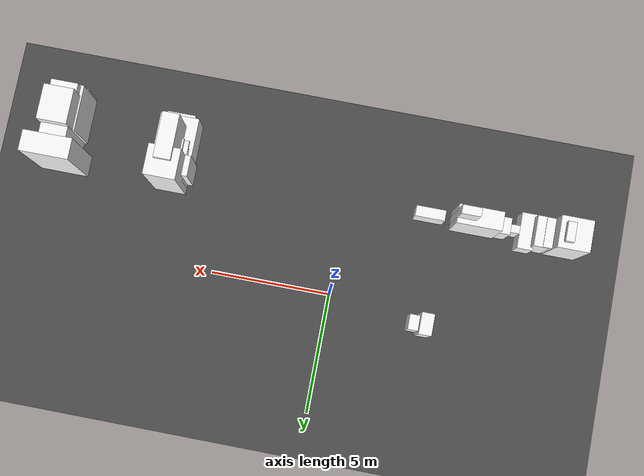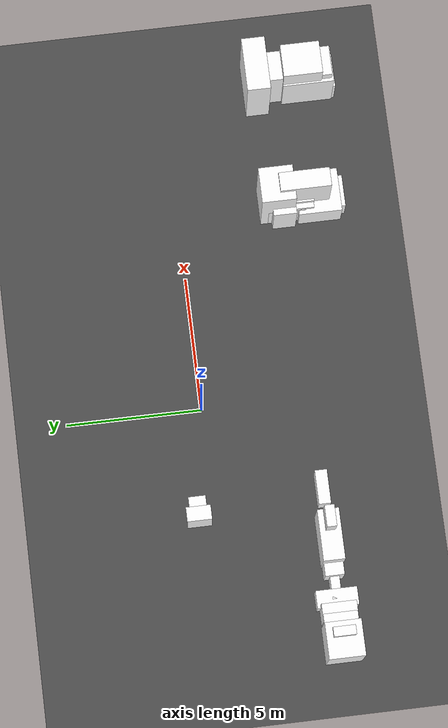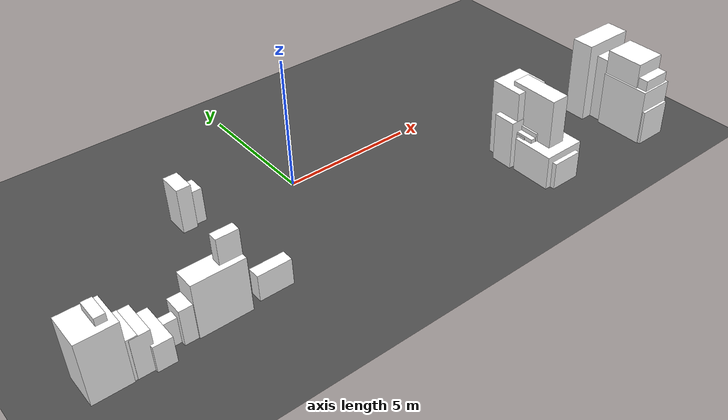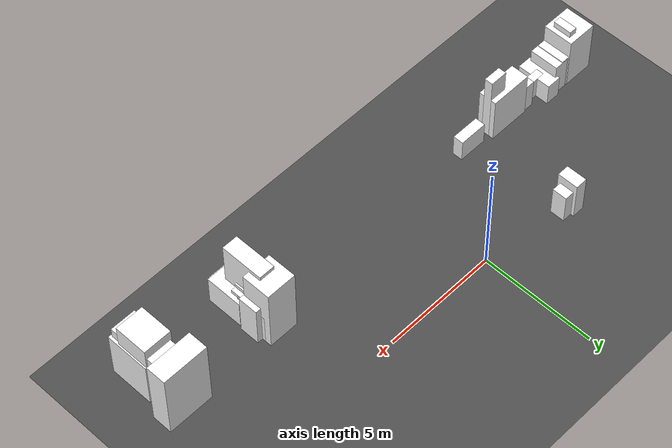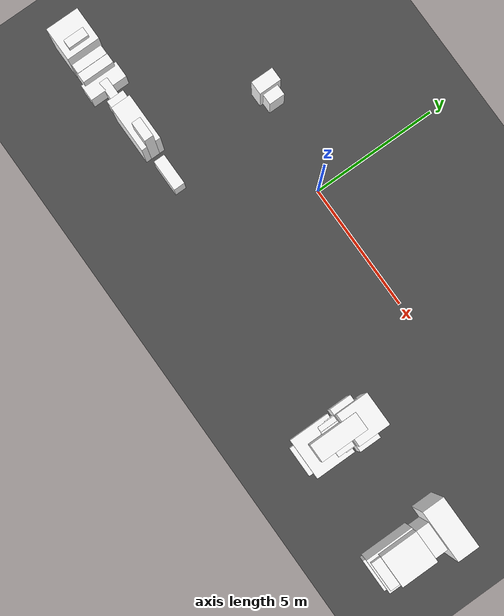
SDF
<sdf version="1.6">
 <world name="mirror_edge_world">
  <model name="ground_plane">
   <static>true</static>
   <link name="link">
    <collision name="collision">
     <geometry><plane><normal>0 0 1</normal><size>100 100</size></plane></geometry>
    </collision>
    <visual name="visual">
     <geometry><plane><normal>0 0 1</normal><size>100 100</size></plane></geometry>
     <material>
      <ambient>0.3 0.3 0.3 1</ambient>
      <diffuse>0.3 0.3 0.3 1</diffuse>
      <specular>0.5 0.5 0.5 1</specular>
      <emissive>0 0 0 1</emissive>
     </material>
    </visual>
   </link>
  </model>
  <model name="roadside_block_4_55_0">
   <static>true</static>
   <link name="link">
    <pose>-9.180717003123458 -4.037353343994417 1.182601318601939 0 0 0</pose>
    <collision name="collision">
     <geometry><box><size>1.31819051042542 1.316484710877024 2.365202637203878</size></box></geometry>
    </collision>
    <visual name="visual">
     <geometry><box><size>1.31819051042542 1.316484710877024 2.365202637203878</size></box></geometry>
     <material>
      <ambient>1 1 1 1</ambient>
      <diffuse>1 1 1 1</diffuse>
      <specular>0.9 0.9 0.9 1</specular>
      <emissive>0.05 0.05 0.05 1</emissive>
     </material>
    </visual>
   </link>
  </model>
  <model name="roadside_block_4_56_0">
   <static>true</static>
   <link name="link">
    <pose>-8.910439130452975 -4.037353343994417 1.3215104466818355 0 0 0</pose>
    <collision name="collision">
     <geometry><box><size>0.3481101251274835 0.8099121674919845 2.643020893363671</size></box></geometry>
    </collision>
    <visual name="visual">
     <geometry><box><size>0.3481101251274835 0.8099121674919845 2.643020893363671</size></box></geometry>
     <material>
      <ambient>1 1 1 1</ambient>
      <diffuse>1 1 1 1</diffuse>
      <specular>0.9 0.9 0.9 1</specular>
      <emissive>0.05 0.05 0.05 1</emissive>
     </material>
    </visual>
   </link>
  </model>
  <model name="roadside_block_4_57_0">
   <static>true</static>
   <link name="link">
    <pose>-8.640161257782493 -4.037353343994417 0.7910589240658343 0 0 0</pose>
    <collision name="collision">
     <geometry><box><size>0.9883071514049591 1.2464293320204758 1.5821178481316687</size></box></geometry>
    </collision>
    <visual name="visual">
     <geometry><box><size>0.9883071514049591 1.2464293320204758 1.5821178481316687</size></box></geometry>
     <material>
      <ambient>1 1 1 1</ambient>
      <diffuse>1 1 1 1</diffuse>
      <specular>0.9 0.9 0.9 1</specular>
      <emissive>0.05 0.05 0.05 1</emissive>
     </material>
    </visual>
   </link>
  </model>
  <model name="roadside_block_4_59_0">
   <static>true</static>
   <link name="link">
    <pose>-8.099605512441528 -4.037353343994417 0.7768243807806121 0 0 0</pose>
    <collision name="collision">
     <geometry><box><size>0.6513775224002112 1.2747233725840352 1.5536487615612242</size></box></geometry>
    </collision>
    <visual name="visual">
     <geometry><box><size>0.6513775224002112 1.2747233725840352 1.5536487615612242</size></box></geometry>
     <material>
      <ambient>1 1 1 1</ambient>
      <diffuse>1 1 1 1</diffuse>
      <specular>0.9 0.9 0.9 1</specular>
      <emissive>0.05 0.05 0.05 1</emissive>
     </material>
    </visual>
   </link>
  </model>
  <model name="roadside_block_4_61_0">
   <static>true</static>
   <link name="link">
    <pose>-7.559049767100561 -4.037353343994417 0.5 0 0 0</pose>
    <collision name="collision">
     <geometry><box><size>0.6460904792428995 1.5150489043961595 1.0</size></box></geometry>
    </collision>
    <visual name="visual">
     <geometry><box><size>0.6460904792428995 1.5150489043961595 1.0</size></box></geometry>
     <material>
      <ambient>1 1 1 1</ambient>
      <diffuse>1 1 1 1</diffuse>
      <specular>0.9 0.9 0.9 1</specular>
      <emissive>0.05 0.05 0.05 1</emissive>
     </material>
    </visual>
   </link>
  </model>
  <model name="roadside_block_4_63_0">
   <static>true</static>
   <link name="link">
    <pose>-7.018494021759597 -4.037353343994417 0.5 0 0 0</pose>
    <collision name="collision">
     <geometry><box><size>1.1628999586268218 0.3433489319059 1.0</size></box></geometry>
    </collision>
    <visual name="visual">
     <geometry><box><size>1.1628999586268218 0.3433489319059 1.0</size></box></geometry>
     <material>
      <ambient>1 1 1 1</ambient>
      <diffuse>1 1 1 1</diffuse>
      <specular>0.9 0.9 0.9 1</specular>
      <emissive>0.05 0.05 0.05 1</emissive>
     </material>
    </visual>
   </link>
  </model>
  <model name="roadside_block_4_65_0">
   <static>true</static>
   <link name="link">
    <pose>-6.477938276418634 -4.037353343994417 0.6767401180126882 0 0 0</pose>
    <collision name="collision">
     <geometry><box><size>0.6304540982120892 0.7008710442743983 1.3534802360253764</size></box></geometry>
    </collision>
    <visual name="visual">
     <geometry><box><size>0.6304540982120892 0.7008710442743983 1.3534802360253764</size></box></geometry>
     <material>
      <ambient>1 1 1 1</ambient>
      <diffuse>1 1 1 1</diffuse>
      <specular>0.9 0.9 0.9 1</specular>
      <emissive>0.05 0.05 0.05 1</emissive>
     </material>
    </visual>
   </link>
  </model>
  <model name="roadside_block_4_69_0">
   <static>true</static>
   <link name="link">
    <pose>-5.396826785736703 -4.037353343994417 1.0483481255024214 0 0 0</pose>
    <collision name="collision">
     <geometry><box><size>1.8570328902194415 0.7885646274507241 2.096696251004843</size></box></geometry>
    </collision>
    <visual name="visual">
     <geometry><box><size>1.8570328902194415 0.7885646274507241 2.096696251004843</size></box></geometry>
     <material>
      <ambient>1 1 1 1</ambient>
      <diffuse>1 1 1 1</diffuse>
      <specular>0.9 0.9 0.9 1</specular>
      <emissive>0.05 0.05 0.05 1</emissive>
     </material>
    </visual>
   </link>
  </model>
  <model name="roadside_block_4_71_0">
   <static>true</static>
   <link name="link">
    <pose>-4.85627104039574 -4.037353343994417 1.529012102121926 0 0 0</pose>
    <collision name="collision">
     <geometry><box><size>0.7784235450919456 0.35682794878201507 3.058024204243852</size></box></geometry>
    </collision>
    <visual name="visual">
     <geometry><box><size>0.7784235450919456 0.35682794878201507 3.058024204243852</size></box></geometry>
     <material>
      <ambient>1 1 1 1</ambient>
      <diffuse>1 1 1 1</diffuse>
      <specular>0.9 0.9 0.9 1</specular>
      <emissive>0.05 0.05 0.05 1</emissive>
     </material>
    </visual>
   </link>
  </model>
  <model name="roadside_block_4_74_0">
   <static>true</static>
   <link name="link">
    <pose>-4.045437422384289 0.5626466560055823 0.8795741425737434 0 0 0</pose>
    <collision name="collision">
     <geometry><box><size>0.525638513308506 0.9010704101569069 1.759148285147487</size></box></geometry>
    </collision>
    <visual name="visual">
     <geometry><box><size>0.525638513308506 0.9010704101569069 1.759148285147487</size></box></geometry>
     <material>
      <ambient>1 1 1 1</ambient>
      <diffuse>1 1 1 1</diffuse>
      <specular>0.9 0.9 0.9 1</specular>
      <emissive>0.05 0.05 0.05 1</emissive>
     </material>
    </visual>
   </link>
  </model>
  <model name="roadside_block_4_75_0">
   <static>true</static>
   <link name="link">
    <pose>-3.775159549713809 0.5626466560055823 0.6717874063257285 0 0 0</pose>
    <collision name="collision">
     <geometry><box><size>0.8217626820669542 0.6338635389022267 1.343574812651457</size></box></geometry>
    </collision>
    <visual name="visual">
     <geometry><box><size>0.8217626820669542 0.6338635389022267 1.343574812651457</size></box></geometry>
     <material>
      <ambient>1 1 1 1</ambient>
      <diffuse>1 1 1 1</diffuse>
      <specular>0.9 0.9 0.9 1</specular>
      <emissive>0.05 0.05 0.05 1</emissive>
     </material>
    </visual>
   </link>
  </model>
  <model name="roadside_block_4_76_0">
   <static>true</static>
   <link name="link">
    <pose>-3.5048816770433255 -4.037353343994417 0.5047758168865659 0 0 0</pose>
    <collision name="collision">
     <geometry><box><size>1.2495996281936645 0.44708496023002886 1.0095516337731318</size></box></geometry>
    </collision>
    <visual name="visual">
     <geometry><box><size>1.2495996281936645 0.44708496023002886 1.0095516337731318</size></box></geometry>
     <material>
      <ambient>1 1 1 1</ambient>
      <diffuse>1 1 1 1</diffuse>
      <specular>0.9 0.9 0.9 1</specular>
      <emissive>0.05 0.05 0.05 1</emissive>
     </material>
    </visual>
   </link>
  </model>
  <model name="roadside_block_5_0_0">
   <static>true</static>
   <link name="link">
    <pose>12.062890913326367 -6.04 0.6839875283101858 0 0 0</pose>
    <collision name="collision">
     <geometry><box><size>1.2572220566803494 0.7546891650662729 1.3679750566203717</size></box></geometry>
    </collision>
    <visual name="visual">
     <geometry><box><size>1.2572220566803494 0.7546891650662729 1.3679750566203717</size></box></geometry>
     <material>
      <ambient>1 1 1 1</ambient>
      <diffuse>1 1 1 1</diffuse>
      <specular>0.9 0.9 0.9 1</specular>
      <emissive>0.05 0.05 0.05 1</emissive>
     </material>
    </visual>
   </link>
  </model>
  <model name="roadside_block_5_1_0">
   <static>true</static>
   <link name="link">
    <pose>12.062890913326367 -5.9276476770910875 1.3047750438973034 0 0 0</pose>
    <collision name="collision">
     <geometry><box><size>1.1072448224689375 0.6392549589485732 2.6095500877946067</size></box></geometry>
    </collision>
    <visual name="visual">
     <geometry><box><size>1.1072448224689375 0.6392549589485732 2.6095500877946067</size></box></geometry>
     <material>
      <ambient>1 1 1 1</ambient>
      <diffuse>1 1 1 1</diffuse>
      <specular>0.9 0.9 0.9 1</specular>
      <emissive>0.05 0.05 0.05 1</emissive>
     </material>
    </visual>
   </link>
  </model>
  <model name="roadside_block_5_2_0">
   <static>true</static>
   <link name="link">
    <pose>12.062890913326367 -5.815295354182175 1.056510042086433 0 0 0</pose>
    <collision name="collision">
     <geometry><box><size>0.9287362196668629 0.9103313230841756 2.113020084172866</size></box></geometry>
    </collision>
    <visual name="visual">
     <geometry><box><size>0.9287362196668629 0.9103313230841756 2.113020084172866</size></box></geometry>
     <material>
      <ambient>1 1 1 1</ambient>
      <diffuse>1 1 1 1</diffuse>
      <specular>0.9 0.9 0.9 1</specular>
      <emissive>0.05 0.05 0.05 1</emissive>
     </material>
    </visual>
   </link>
  </model>
  <model name="roadside_block_5_3_0">
   <static>true</static>
   <link name="link">
    <pose>12.062890913326367 -5.7029430312732625 0.5344201764649996 0 0 0</pose>
    <collision name="collision">
     <geometry><box><size>0.6895226664266707 0.7217084018837645 1.0688403529299992</size></box></geometry>
    </collision>
    <visual name="visual">
     <geometry><box><size>0.6895226664266707 0.7217084018837645 1.0688403529299992</size></box></geometry>
     <material>
      <ambient>1 1 1 1</ambient>
      <diffuse>1 1 1 1</diffuse>
      <specular>0.9 0.9 0.9 1</specular>
      <emissive>0.05 0.05 0.05 1</emissive>
     </material>
    </visual>
   </link>
  </model>
  <model name="roadside_block_5_4_0">
   <static>true</static>
   <link name="link">
    <pose>7.462890913326366 -5.590590708364351 0.5286381470160281 0 0 0</pose>
    <collision name="collision">
     <geometry><box><size>1.1811662902760618 1.2767910518876113 1.0572762940320561</size></box></geometry>
    </collision>
    <visual name="visual">
     <geometry><box><size>1.1811662902760618 1.2767910518876113 1.0572762940320561</size></box></geometry>
     <material>
      <ambient>1 1 1 1</ambient>
      <diffuse>1 1 1 1</diffuse>
      <specular>0.9 0.9 0.9 1</specular>
      <emissive>0.05 0.05 0.05 1</emissive>
     </material>
    </visual>
   </link>
  </model>
  <model name="roadside_block_5_5_0">
   <static>true</static>
   <link name="link">
    <pose>12.062890913326367 -5.478238385455438 0.7990969906731807 0 0 0</pose>
    <collision name="collision">
     <geometry><box><size>0.3 0.9645681450412635 1.5981939813463615</size></box></geometry>
    </collision>
    <visual name="visual">
     <geometry><box><size>0.3 0.9645681450412635 1.5981939813463615</size></box></geometry>
     <material>
      <ambient>1 1 1 1</ambient>
      <diffuse>1 1 1 1</diffuse>
      <specular>0.9 0.9 0.9 1</specular>
      <emissive>0.05 0.05 0.05 1</emissive>
     </material>
    </visual>
   </link>
  </model>
  <model name="roadside_block_5_6_0">
   <static>true</static>
   <link name="link">
    <pose>12.062890913326367 -5.365886062546526 1.092237613639926 0 0 0</pose>
    <collision name="collision">
     <geometry><box><size>1.350710803589823 1.9001595275933516 2.184475227279852</size></box></geometry>
    </collision>
    <visual name="visual">
     <geometry><box><size>1.350710803589823 1.9001595275933516 2.184475227279852</size></box></geometry>
     <material>
      <ambient>1 1 1 1</ambient>
      <diffuse>1 1 1 1</diffuse>
      <specular>0.9 0.9 0.9 1</specular>
      <emissive>0.05 0.05 0.05 1</emissive>
     </material>
    </visual>
   </link>
  </model>
  <model name="roadside_block_5_7_0">
   <static>true</static>
   <link name="link">
    <pose>7.462890913326366 -5.253533739637613 0.6643491811410942 0 0 0</pose>
    <collision name="collision">
     <geometry><box><size>1.62281068838291 1.601385485039903 1.3286983622821884</size></box></geometry>
    </collision>
    <visual name="visual">
     <geometry><box><size>1.62281068838291 1.601385485039903 1.3286983622821884</size></box></geometry>
     <material>
      <ambient>1 1 1 1</ambient>
      <diffuse>1 1 1 1</diffuse>
      <specular>0.9 0.9 0.9 1</specular>
      <emissive>0.05 0.05 0.05 1</emissive>
     </material>
    </visual>
   </link>
  </model>
  <model name="roadside_block_5_8_0">
   <static>true</static>
   <link name="link">
    <pose>12.062890913326367 -5.141181416728701 1.5707362177437931 0 0 0</pose>
    <collision name="collision">
     <geometry><box><size>1.2241552272853817 1.4458851674191802 3.1414724354875863</size></box></geometry>
    </collision>
    <visual name="visual">
     <geometry><box><size>1.2241552272853817 1.4458851674191802 3.1414724354875863</size></box></geometry>
     <material>
      <ambient>1 1 1 1</ambient>
      <diffuse>1 1 1 1</diffuse>
      <specular>0.9 0.9 0.9 1</specular>
      <emissive>0.05 0.05 0.05 1</emissive>
     </material>
    </visual>
   </link>
  </model>
  <model name="roadside_block_5_9_0">
   <static>true</static>
   <link name="link">
    <pose>12.062890913326367 -5.028829093819788 0.5 0 0 0</pose>
    <collision name="collision">
     <geometry><box><size>0.9601560295783984 0.8625547972489254 1.0</size></box></geometry>
    </collision>
    <visual name="visual">
     <geometry><box><size>0.9601560295783984 0.8625547972489254 1.0</size></box></geometry>
     <material>
      <ambient>1 1 1 1</ambient>
      <diffuse>1 1 1 1</diffuse>
      <specular>0.9 0.9 0.9 1</specular>
      <emissive>0.05 0.05 0.05 1</emissive>
     </material>
    </visual>
   </link>
  </model>
  <model name="roadside_block_5_10_0">
   <static>true</static>
   <link name="link">
    <pose>12.062890913326367 -4.916476770910876 0.5 0 0 0</pose>
    <collision name="collision">
     <geometry><box><size>0.8682692681355768 1.4616150155609997 1.0</size></box></geometry>
    </collision>
    <visual name="visual">
     <geometry><box><size>0.8682692681355768 1.4616150155609997 1.0</size></box></geometry>
     <material>
      <ambient>1 1 1 1</ambient>
      <diffuse>1 1 1 1</diffuse>
      <specular>0.9 0.9 0.9 1</specular>
      <emissive>0.05 0.05 0.05 1</emissive>
     </material>
    </visual>
   </link>
  </model>
  <model name="roadside_block_5_11_0">
   <static>true</static>
   <link name="link">
    <pose>7.462890913326366 -4.804124448001964 0.6079208630360716 0 0 0</pose>
    <collision name="collision">
     <geometry><box><size>0.6741847963244462 1.151411290332141 1.2158417260721432</size></box></geometry>
    </collision>
    <visual name="visual">
     <geometry><box><size>0.6741847963244462 1.151411290332141 1.2158417260721432</size></box></geometry>
     <material>
      <ambient>1 1 1 1</ambient>
      <diffuse>1 1 1 1</diffuse>
      <specular>0.9 0.9 0.9 1</specular>
      <emissive>0.05 0.05 0.05 1</emissive>
     </material>
    </visual>
   </link>
  </model>
  <model name="roadside_block_5_12_0">
   <static>true</static>
   <link name="link">
    <pose>7.462890913326366 -4.691772125093052 1.6059900057942662 0 0 0</pose>
    <collision name="collision">
     <geometry><box><size>0.6990030760301149 1.8751420283832854 3.2119800115885324</size></box></geometry>
    </collision>
    <visual name="visual">
     <geometry><box><size>0.6990030760301149 1.8751420283832854 3.2119800115885324</size></box></geometry>
     <material>
      <ambient>1 1 1 1</ambient>
      <diffuse>1 1 1 1</diffuse>
      <specular>0.9 0.9 0.9 1</specular>
      <emissive>0.05 0.05 0.05 1</emissive>
     </material>
    </visual>
   </link>
  </model>
  <model name="roadside_block_5_13_0">
   <static>true</static>
   <link name="link">
    <pose>7.462890913326366 -4.579419802184139 0.7412239582964526 0 0 0</pose>
    <collision name="collision">
     <geometry><box><size>1.2512814545041357 0.8947039372998611 1.4824479165929052</size></box></geometry>
    </collision>
    <visual name="visual">
     <geometry><box><size>1.2512814545041357 0.8947039372998611 1.4824479165929052</size></box></geometry>
     <material>
      <ambient>1 1 1 1</ambient>
      <diffuse>1 1 1 1</diffuse>
      <specular>0.9 0.9 0.9 1</specular>
      <emissive>0.05 0.05 0.05 1</emissive>
     </material>
    </visual>
   </link>
  </model>
  <model name="roadside_block_5_14_0">
   <static>true</static>
   <link name="link">
    <pose>7.462890913326366 -4.467067479275227 0.8246701795074932 0 0 0</pose>
    <collision name="collision">
     <geometry><box><size>0.8453237525778604 1.1519686506283553 1.6493403590149864</size></box></geometry>
    </collision>
    <visual name="visual">
     <geometry><box><size>0.8453237525778604 1.1519686506283553 1.6493403590149864</size></box></geometry>
     <material>
      <ambient>1 1 1 1</ambient>
      <diffuse>1 1 1 1</diffuse>
      <specular>0.9 0.9 0.9 1</specular>
      <emissive>0.05 0.05 0.05 1</emissive>
     </material>
    </visual>
   </link>
  </model>
  <model name="roadside_block_5_15_0">
   <static>true</static>
   <link name="link">
    <pose>12.062890913326367 -4.354715156366314 1.3321006200195669 0 0 0</pose>
    <collision name="collision">
     <geometry><box><size>1.105888428388987 2.0 2.6642012400391337</size></box></geometry>
    </collision>
    <visual name="visual">
     <geometry><box><size>1.105888428388987 2.0 2.6642012400391337</size></box></geometry>
     <material>
      <ambient>1 1 1 1</ambient>
      <diffuse>1 1 1 1</diffuse>
      <specular>0.9 0.9 0.9 1</specular>
      <emissive>0.05 0.05 0.05 1</emissive>
     </material>
    </visual>
   </link>
  </model>
  <model name="roadside_block_5_16_0">
   <static>true</static>
   <link name="link">
    <pose>12.062890913326367 -4.242362833457402 1.2343460443784497 0 0 0</pose>
    <collision name="collision">
     <geometry><box><size>0.476268645544499 0.6538674135758884 2.4686920887568995</size></box></geometry>
    </collision>
    <visual name="visual">
     <geometry><box><size>0.476268645544499 0.6538674135758884 2.4686920887568995</size></box></geometry>
     <material>
      <ambient>1 1 1 1</ambient>
      <diffuse>1 1 1 1</diffuse>
      <specular>0.9 0.9 0.9 1</specular>
      <emissive>0.05 0.05 0.05 1</emissive>
     </material>
    </visual>
   </link>
  </model>
  <model name="roadside_block_5_17_0">
   <static>true</static>
   <link name="link">
    <pose>12.062890913326367 -4.130010510548489 0.8958507862396189 0 0 0</pose>
    <collision name="collision">
     <geometry><box><size>0.7288252766821881 0.9272065582534893 1.7917015724792378</size></box></geometry>
    </collision>
    <visual name="visual">
     <geometry><box><size>0.7288252766821881 0.9272065582534893 1.7917015724792378</size></box></geometry>
     <material>
      <ambient>1 1 1 1</ambient>
      <diffuse>1 1 1 1</diffuse>
      <specular>0.9 0.9 0.9 1</specular>
      <emissive>0.05 0.05 0.05 1</emissive>
     </material>
    </visual>
   </link>
  </model>
  <model name="roadside_block_5_18_0">
   <static>true</static>
   <link name="link">
    <pose>7.462890913326366 -4.017658187639578 0.7067203809284874 0 0 0</pose>
    <collision name="collision">
     <geometry><box><size>1.312521119469361 1.3804334737777375 1.4134407618569749</size></box></geometry>
    </collision>
    <visual name="visual">
     <geometry><box><size>1.312521119469361 1.3804334737777375 1.4134407618569749</size></box></geometry>
     <material>
      <ambient>1 1 1 1</ambient>
      <diffuse>1 1 1 1</diffuse>
      <specular>0.9 0.9 0.9 1</specular>
      <emissive>0.05 0.05 0.05 1</emissive>
     </material>
    </visual>
   </link>
  </model>
  <model name="roadside_block_5_19_0">
   <static>true</static>
   <link name="link">
    <pose>7.462890913326366 -3.9053058647306647 0.9604703885063754 0 0 0</pose>
    <collision name="collision">
     <geometry><box><size>1.786218608274631 0.8604340379993577 1.920940777012751</size></box></geometry>
    </collision>
    <visual name="visual">
     <geometry><box><size>1.786218608274631 0.8604340379993577 1.920940777012751</size></box></geometry>
     <material>
      <ambient>1 1 1 1</ambient>
      <diffuse>1 1 1 1</diffuse>
      <specular>0.9 0.9 0.9 1</specular>
      <emissive>0.05 0.05 0.05 1</emissive>
     </material>
    </visual>
   </link>
  </model>
  <model name="roadside_block_5_20_0">
   <static>true</static>
   <link name="link">
    <pose>7.462890913326366 -3.7929535418217526 1.5048184005042922 0 0 0</pose>
    <collision name="collision">
     <geometry><box><size>0.5579701575700471 0.6888305685929899 3.0096368010085843</size></box></geometry>
    </collision>
    <visual name="visual">
     <geometry><box><size>0.5579701575700471 0.6888305685929899 3.0096368010085843</size></box></geometry>
     <material>
      <ambient>1 1 1 1</ambient>
      <diffuse>1 1 1 1</diffuse>
      <specular>0.9 0.9 0.9 1</specular>
      <emissive>0.05 0.05 0.05 1</emissive>
     </material>
    </visual>
   </link>
  </model>
  <model name="roadside_block_5_21_0">
   <static>true</static>
   <link name="link">
    <pose>7.462890913326366 -3.68060121891284 1.518196794514299 0 0 0</pose>
    <collision name="collision">
     <geometry><box><size>1.3119023714786715 1.2656905888678087 3.036393589028598</size></box></geometry>
    </collision>
    <visual name="visual">
     <geometry><box><size>1.3119023714786715 1.2656905888678087 3.036393589028598</size></box></geometry>
     <material>
      <ambient>1 1 1 1</ambient>
      <diffuse>1 1 1 1</diffuse>
      <specular>0.9 0.9 0.9 1</specular>
      <emissive>0.05 0.05 0.05 1</emissive>
     </material>
    </visual>
   </link>
  </model>
  <model name="roadside_block_5_22_0">
   <static>true</static>
   <link name="link">
    <pose>7.462890913326366 -3.568248896003928 0.6480145948928364 0 0 0</pose>
    <collision name="collision">
     <geometry><box><size>0.6516468691005712 0.3 1.2960291897856728</size></box></geometry>
    </collision>
    <visual name="visual">
     <geometry><box><size>0.6516468691005712 0.3 1.2960291897856728</size></box></geometry>
     <material>
      <ambient>1 1 1 1</ambient>
      <diffuse>1 1 1 1</diffuse>
      <specular>0.9 0.9 0.9 1</specular>
      <emissive>0.05 0.05 0.05 1</emissive>
     </material>
    </visual>
   </link>
  </model>
  <model name="roadside_block_5_23_0">
   <static>true</static>
   <link name="link">
    <pose>12.062890913326367 -3.4558965730950155 1.5948741173631436 0 0 0</pose>
    <collision name="collision">
     <geometry><box><size>2.0 0.8656504839563651 3.189748234726287</size></box></geometry>
    </collision>
    <visual name="visual">
     <geometry><box><size>2.0 0.8656504839563651 3.189748234726287</size></box></geometry>
     <material>
      <ambient>1 1 1 1</ambient>
      <diffuse>1 1 1 1</diffuse>
      <specular>0.9 0.9 0.9 1</specular>
      <emissive>0.05 0.05 0.05 1</emissive>
     </material>
    </visual>
   </link>
  </model>
 </world>
</sdf>
